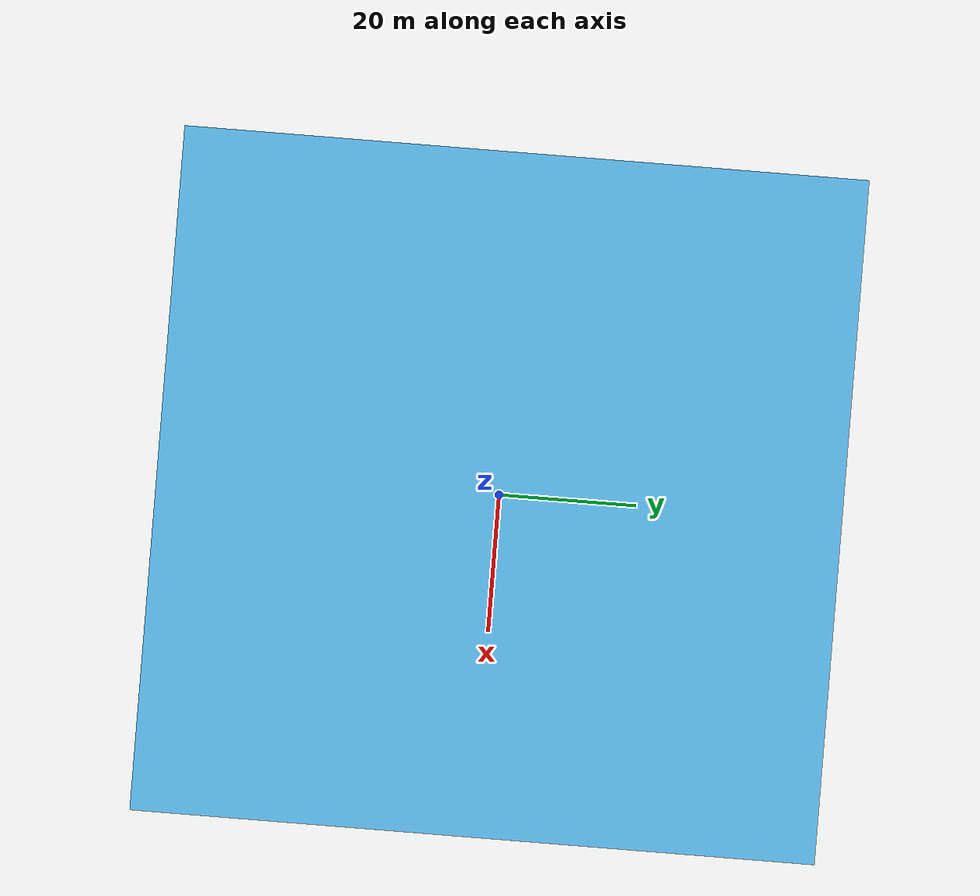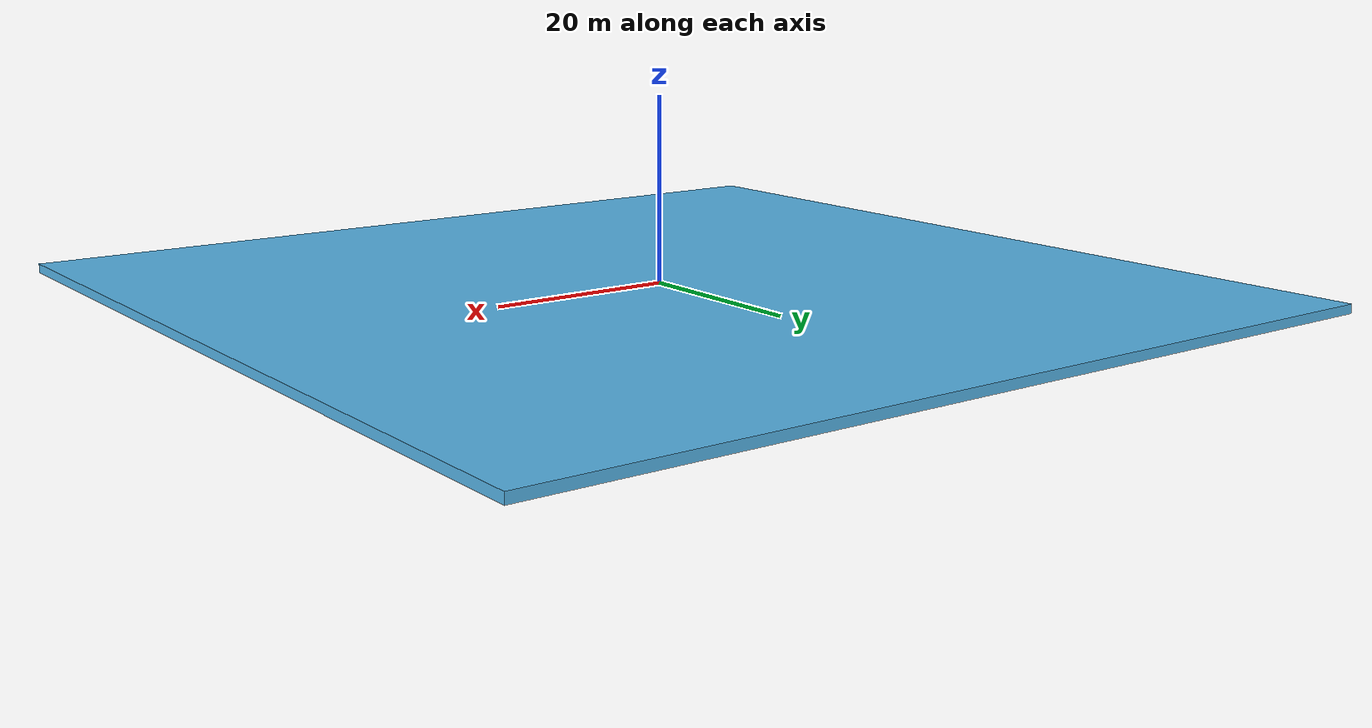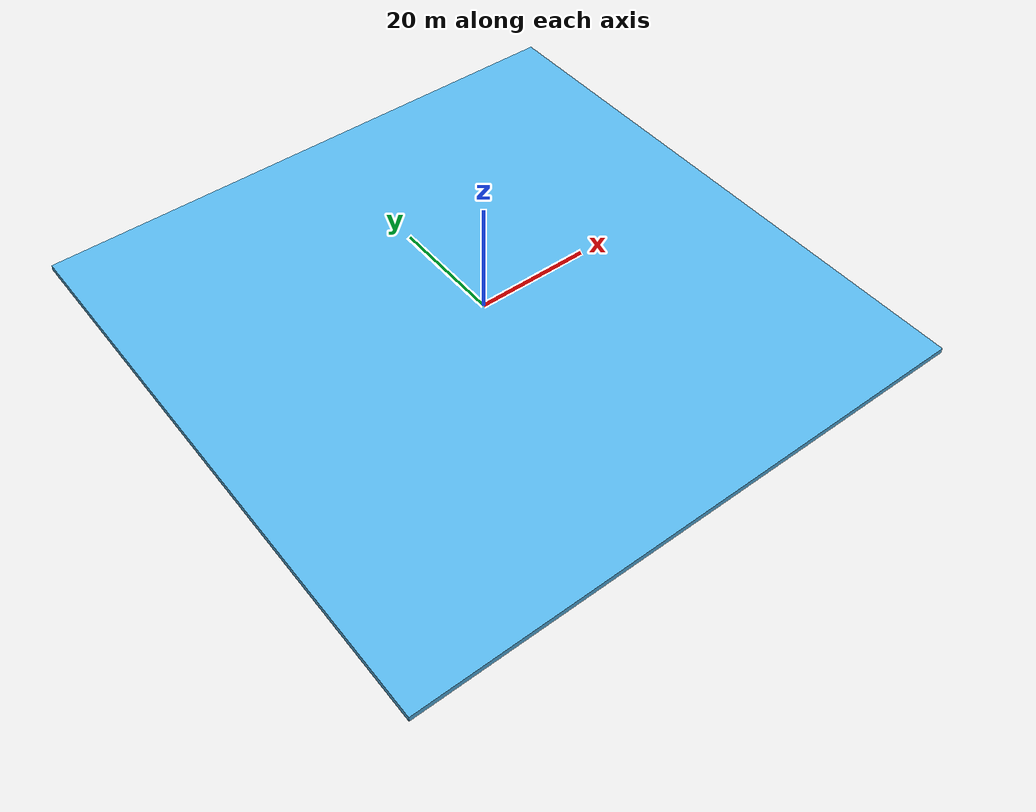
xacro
<?xml version="1.0"?>
<robot name="ground" xmlns:xacro="http://www.ros.org/wiki/xacro">

  <xacro:property name="len" value="100"/>
  <xacro:property name="h" value="1"/>
  <xacro:property name="h_dep" value="-0.5" />
  <xacro:property name="i" value="500.0" />
  <xacro:property name="mass" value="2500.0" />

  <!-- Define ground -->
  <link name="world"/>
  <joint name="fixed_ground" type="fixed">
    <parent link="world"/>
    <child link="ground"/>
  </joint>

  <link name="ground">
    <collision>
      <origin xyz="0 0 ${h_dep}" rpy="0 0.0 0"/>
      <geometry>
        <box size="${len} ${len} ${h}" rpy="0 0 0"/>
      </geometry>
    </collision>
    <visual>
      <origin xyz="0 0 ${h_dep}" rpy="0 0.0 0"/>
      <geometry>
        <box size="${len} ${len} ${h}" rpy="0 0 0"/>
      </geometry>
    </visual>
    <inertial>
      <origin xyz="0 0 ${h_dep}" rpy="0 0.0 0"/>
      <mass value="${mass}"/>
      <inertia
        ixx="${i}" ixy="${i}" ixz="${i}"
	iyy="${i}" iyz="${i}"
	izz="${i}" />
    </inertial>

  </link>

</robot>
